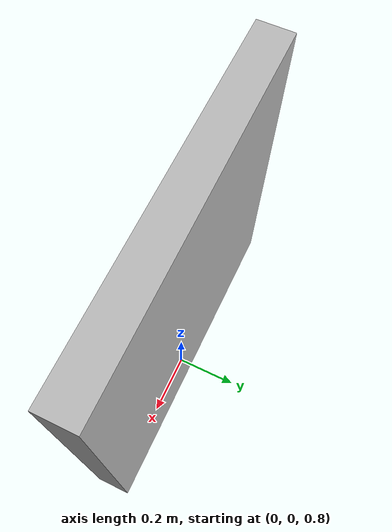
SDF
<?xml version="1.0" ?>
<sdf version="1.5">
  <model name="QR_Walla">
    <static>true</static>
    <link name="link">
      <pose>0 0 1.4 0 0 0</pose>
      <collision name="collision">
        <geometry>
          <box>
            <size>1 0.1 1</size>
          </box>
        </geometry>
      </collision>
      <visual name="visual">
        <cast_shadows>false</cast_shadows>
        <geometry>
          <box>
            <size>1 0.1 1</size>
          </box>
        </geometry>
        <material>
          <script>
            <uri>model://QR_Wall/materials/scripts</uri>
            <uri>model://QR_Wall/materials/textures</uri>
            <name>vrc/QR_Walla</name>
          </script>
        </material>
      </visual>
    </link>
  </model>
</sdf>
